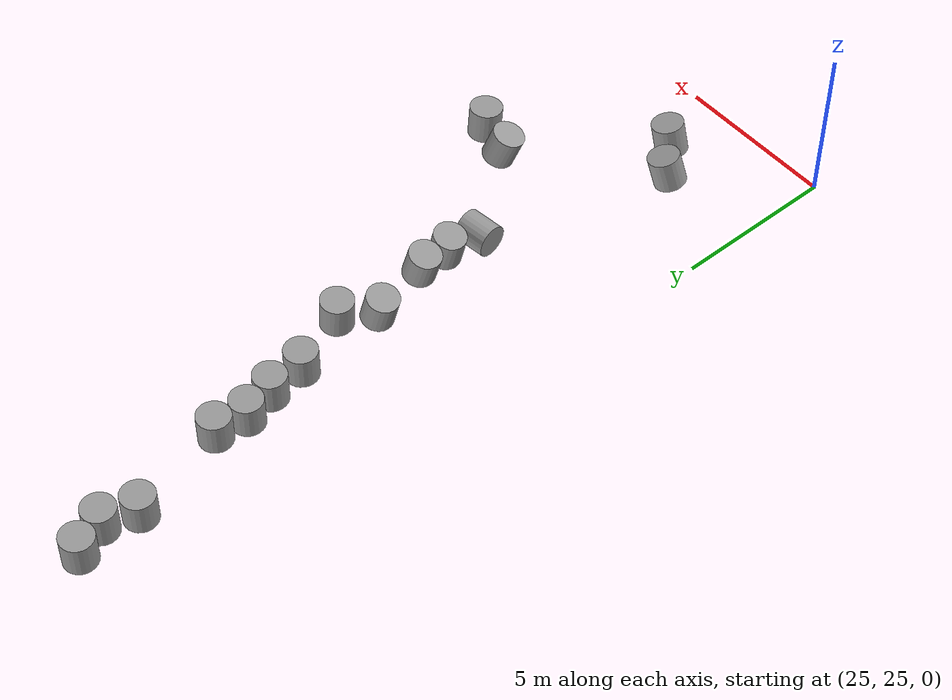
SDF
<sdf version="1.7">
 <world name="default">
  <model name="unit_cylinder_85_clone_244_clone_257">
   <pose>29.9475 34.9793 0.347305 0.054 -0.214036 0.017888</pose>
   <link name="link">
    <inertial>
     <mass>1</mass>
     <inertia><ixx>0.145833</ixx><ixy>0</ixy><ixz>0</ixz><iyy>0.145833</iyy><iyz>0</iyz><izz>0.125</izz></inertia>
    </inertial>
    <collision name="collision">
     <geometry><cylinder><radius>0.5</radius><length>1</length></cylinder></geometry>
    </collision>
    <visual name="visual">
     <geometry><cylinder><radius>0.5</radius><length>1</length></cylinder></geometry>
     <material>
      <script><name>Gazebo/Grey</name><uri>file://media/materials/scripts/gazebo.material</uri></script>
     </material>
    </visual>
   </link>
  </model>
  <model name="unit_cylinder_85_clone_244_clone_258">
   <pose>29.8685 35.9763 0.365911 0.056542 -0.266101 0.020209</pose>
   <link name="link">
    <inertial>
     <mass>1</mass>
     <inertia><ixx>0.145833</ixx><ixy>0</ixy><ixz>0</ixz><iyy>0.145833</iyy><iyz>0</iyz><izz>0.125</izz></inertia>
    </inertial>
    <collision name="collision">
     <geometry><cylinder><radius>0.5</radius><length>1</length></cylinder></geometry>
    </collision>
    <visual name="visual">
     <geometry><cylinder><radius>0.5</radius><length>1</length></cylinder></geometry>
     <material>
      <script><name>Gazebo/Grey</name><uri>file://media/materials/scripts/gazebo.material</uri></script>
     </material>
    </visual>
   </link>
  </model>
  <model name="unit_cylinder_85_clone_244_clone_259">
   <pose>29.3611 37.9117 0.358735 0.060869 -0.244281 -0.014576</pose>
   <link name="link">
    <inertial>
     <mass>1</mass>
     <inertia><ixx>0.145833</ixx><ixy>0</ixy><ixz>0</ixz><iyy>0.145833</iyy><iyz>0</iyz><izz>0.125</izz></inertia>
    </inertial>
    <collision name="collision">
     <geometry><cylinder><radius>0.5</radius><length>1</length></cylinder></geometry>
    </collision>
    <visual name="visual">
     <geometry><cylinder><radius>0.5</radius><length>1</length></cylinder></geometry>
     <material>
      <script><name>Gazebo/Grey</name><uri>file://media/materials/scripts/gazebo.material</uri></script>
     </material>
    </visual>
   </link>
  </model>
  <model name="unit_cylinder_85_clone_244_clone_260">
   <pose>29.9369 38.9882 0.474181 0.014069 -0.057988 -0.005899</pose>
   <link name="link">
    <inertial>
     <mass>1</mass>
     <inertia><ixx>0.145833</ixx><ixy>0</ixy><ixz>0</ixz><iyy>0.145833</iyy><iyz>0</iyz><izz>0.125</izz></inertia>
    </inertial>
    <collision name="collision">
     <geometry><cylinder><radius>0.5</radius><length>1</length></cylinder></geometry>
    </collision>
    <visual name="visual">
     <geometry><cylinder><radius>0.5</radius><length>1</length></cylinder></geometry>
     <material>
      <script><name>Gazebo/Grey</name><uri>file://media/materials/scripts/gazebo.material</uri></script>
     </material>
    </visual>
   </link>
  </model>
  <model name="unit_cylinder_85_clone_244_clone_261">
   <pose>29.145 40.8383 0.450009 8e-06 -1.6e-05 0.000408</pose>
   <link name="link">
    <inertial>
     <mass>1</mass>
     <inertia><ixx>0.145833</ixx><ixy>0</ixy><ixz>0</ixz><iyy>0.145833</iyy><iyz>0</iyz><izz>0.125</izz></inertia>
    </inertial>
    <collision name="collision">
     <geometry><cylinder><radius>0.5</radius><length>1</length></cylinder></geometry>
    </collision>
    <visual name="visual">
     <geometry><cylinder><radius>0.5</radius><length>1</length></cylinder></geometry>
     <material>
      <script><name>Gazebo/Grey</name><uri>file://media/materials/scripts/gazebo.material</uri></script>
     </material>
    </visual>
   </link>
  </model>
  <model name="unit_cylinder_85_clone_244_clone_262">
   <pose>29 42 0.450005 -1e-06 -1e-05 0.0004</pose>
   <link name="link">
    <inertial>
     <mass>1</mass>
     <inertia><ixx>0.145833</ixx><ixy>0</ixy><ixz>0</ixz><iyy>0.145833</iyy><iyz>0</iyz><izz>0.125</izz></inertia>
    </inertial>
    <collision name="collision">
     <geometry><cylinder><radius>0.5</radius><length>1</length></cylinder></geometry>
    </collision>
    <visual name="visual">
     <geometry><cylinder><radius>0.5</radius><length>1</length></cylinder></geometry>
     <material>
      <script><name>Gazebo/Grey</name><uri>file://media/materials/scripts/gazebo.material</uri></script>
     </material>
    </visual>
   </link>
  </model>
  <model name="unit_cylinder_85_clone_244_clone_263">
   <pose>28.7333 42.9847 0.449997 3e-06 -5e-06 0.001773</pose>
   <link name="link">
    <inertial>
     <mass>1</mass>
     <inertia><ixx>0.145833</ixx><ixy>0</ixy><ixz>0</ixz><iyy>0.145833</iyy><iyz>0</iyz><izz>0.125</izz></inertia>
    </inertial>
    <collision name="collision">
     <geometry><cylinder><radius>0.5</radius><length>1</length></cylinder></geometry>
    </collision>
    <visual name="visual">
     <geometry><cylinder><radius>0.5</radius><length>1</length></cylinder></geometry>
     <material>
      <script><name>Gazebo/Grey</name><uri>file://media/materials/scripts/gazebo.material</uri></script>
     </material>
    </visual>
   </link>
  </model>
  <model name="unit_cylinder_85_clone_244_clone_264">
   <pose>28.8371 43.9793 0.449999 -9e-06 -4e-06 -0.00465</pose>
   <link name="link">
    <inertial>
     <mass>1</mass>
     <inertia><ixx>0.145833</ixx><ixy>0</ixy><ixz>0</ixz><iyy>0.145833</iyy><iyz>0</iyz><izz>0.125</izz></inertia>
    </inertial>
    <collision name="collision">
     <geometry><cylinder><radius>0.5</radius><length>1</length></cylinder></geometry>
    </collision>
    <visual name="visual">
     <geometry><cylinder><radius>0.5</radius><length>1</length></cylinder></geometry>
     <material>
      <script><name>Gazebo/Grey</name><uri>file://media/materials/scripts/gazebo.material</uri></script>
     </material>
    </visual>
   </link>
  </model>
  <model name="unit_cylinder_85_clone_244_clone_267">
   <pose>27.9976 47.0024 0.45 -2e-06 8e-06 -0.005747</pose>
   <link name="link">
    <inertial>
     <mass>1</mass>
     <inertia><ixx>0.145833</ixx><ixy>0</ixy><ixz>0</ixz><iyy>0.145833</iyy><iyz>0</iyz><izz>0.125</izz></inertia>
    </inertial>
    <collision name="collision">
     <geometry><cylinder><radius>0.5</radius><length>1</length></cylinder></geometry>
    </collision>
    <visual name="visual">
     <geometry><cylinder><radius>0.5</radius><length>1</length></cylinder></geometry>
     <material>
      <script><name>Gazebo/Grey</name><uri>file://media/materials/scripts/gazebo.material</uri></script>
     </material>
    </visual>
   </link>
  </model>
  <model name="unit_cylinder_85_clone_244_clone_268">
   <pose>27.9228 48.9353 0.449999 -2e-06 1.4e-05 -0.003826</pose>
   <link name="link">
    <inertial>
     <mass>1</mass>
     <inertia><ixx>0.145833</ixx><ixy>0</ixy><ixz>0</ixz><iyy>0.145833</iyy><iyz>0</iyz><izz>0.125</izz></inertia>
    </inertial>
    <collision name="collision">
     <geometry><cylinder><radius>0.5</radius><length>1</length></cylinder></geometry>
    </collision>
    <visual name="visual">
     <geometry><cylinder><radius>0.5</radius><length>1</length></cylinder></geometry>
     <material>
      <script><name>Gazebo/Grey</name><uri>file://media/materials/scripts/gazebo.material</uri></script>
     </material>
    </visual>
   </link>
  </model>
  <model name="unit_cylinder_85_clone_244_clone_277">
   <pose>28.3147 48.0121 0.450003 -3e-06 1.7e-05 -0.004433</pose>
   <link name="link">
    <inertial>
     <mass>1</mass>
     <inertia><ixx>0.145833</ixx><ixy>0</ixy><ixz>0</ixz><iyy>0.145833</iyy><iyz>0</iyz><izz>0.125</izz></inertia>
    </inertial>
    <collision name="collision">
     <geometry><cylinder><radius>0.5</radius><length>1</length></cylinder></geometry>
    </collision>
    <visual name="visual">
     <geometry><cylinder><radius>0.5</radius><length>1</length></cylinder></geometry>
     <material>
      <script><name>Gazebo/Grey</name><uri>file://media/materials/scripts/gazebo.material</uri></script>
     </material>
    </visual>
   </link>
  </model>
  <model name="unit_cylinder_85_clone_244_clone_322">
   <pose>33.0601 30.8864 0.492723 0.070139 -0.008589 0.011395</pose>
   <link name="link">
    <inertial>
     <mass>1</mass>
     <inertia><ixx>0.145833</ixx><ixy>0</ixy><ixz>0</ixz><iyy>0.145833</iyy><iyz>0</iyz><izz>0.125</izz></inertia>
    </inertial>
    <collision name="collision">
     <geometry><cylinder><radius>0.5</radius><length>1</length></cylinder></geometry>
    </collision>
    <visual name="visual">
     <geometry><cylinder><radius>0.5</radius><length>1</length></cylinder></geometry>
     <material>
      <script><name>Gazebo/Grey</name><uri>file://media/materials/scripts/gazebo.material</uri></script>
     </material>
    </visual>
   </link>
  </model>
  <model name="unit_cylinder_85_clone_244_clone_323">
   <pose>31.9104 31.1676 0.462705 0.185963 -0.298288 0.132879</pose>
   <link name="link">
    <inertial>
     <mass>1</mass>
     <inertia><ixx>0.145833</ixx><ixy>0</ixy><ixz>0</ixz><iyy>0.145833</iyy><iyz>0</iyz><izz>0.125</izz></inertia>
    </inertial>
    <collision name="collision">
     <geometry><cylinder><radius>0.5</radius><length>1</length></cylinder></geometry>
    </collision>
    <visual name="visual">
     <geometry><cylinder><radius>0.5</radius><length>1</length></cylinder></geometry>
     <material>
      <script><name>Gazebo/Grey</name><uri>file://media/materials/scripts/gazebo.material</uri></script>
     </material>
    </visual>
   </link>
  </model>
  <model name="unit_cylinder_85_clone_244_clone_325">
   <pose>29.7622 33.9421 0.31781 -1.60994 0.111559 1.7104</pose>
   <link name="link">
    <inertial>
     <mass>1</mass>
     <inertia><ixx>0.145833</ixx><ixy>0</ixy><ixz>0</ixz><iyy>0.145833</iyy><iyz>0</iyz><izz>0.125</izz></inertia>
    </inertial>
    <collision name="collision">
     <geometry><cylinder><radius>0.5</radius><length>1</length></cylinder></geometry>
    </collision>
    <visual name="visual">
     <geometry><cylinder><radius>0.5</radius><length>1</length></cylinder></geometry>
     <material>
      <script><name>Gazebo/Grey</name><uri>file://media/materials/scripts/gazebo.material</uri></script>
     </material>
    </visual>
   </link>
  </model>
  <model name="unit_cylinder_85_clone_244_clone_328">
   <pose>28.1179 28.0725 0.392316 -0.152193 0.239448 -0.013829</pose>
   <link name="link">
    <inertial>
     <mass>1</mass>
     <inertia><ixx>0.145833</ixx><ixy>0</ixy><ixz>0</ixz><iyy>0.145833</iyy><iyz>0</iyz><izz>0.125</izz></inertia>
    </inertial>
    <collision name="collision">
     <geometry><cylinder><radius>0.5</radius><length>1</length></cylinder></geometry>
    </collision>
    <visual name="visual">
     <geometry><cylinder><radius>0.5</radius><length>1</length></cylinder></geometry>
     <material>
      <script><name>Gazebo/Grey</name><uri>file://media/materials/scripts/gazebo.material</uri></script>
     </material>
    </visual>
   </link>
  </model>
  <model name="unit_cylinder_85_clone_244_clone_329">
   <pose>29.0856 27.038 0.3443 -0.082488 0.196355 -0.012505</pose>
   <link name="link">
    <inertial>
     <mass>1</mass>
     <inertia><ixx>0.145833</ixx><ixy>0</ixy><ixz>0</ixz><iyy>0.145833</iyy><iyz>0</iyz><izz>0.125</izz></inertia>
    </inertial>
    <collision name="collision">
     <geometry><cylinder><radius>0.5</radius><length>1</length></cylinder></geometry>
    </collision>
    <visual name="visual">
     <geometry><cylinder><radius>0.5</radius><length>1</length></cylinder></geometry>
     <material>
      <script><name>Gazebo/Grey</name><uri>file://media/materials/scripts/gazebo.material</uri></script>
     </material>
    </visual>
   </link>
  </model>
 </world>
</sdf>
